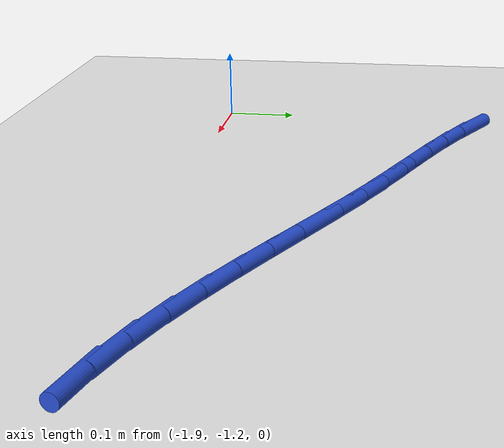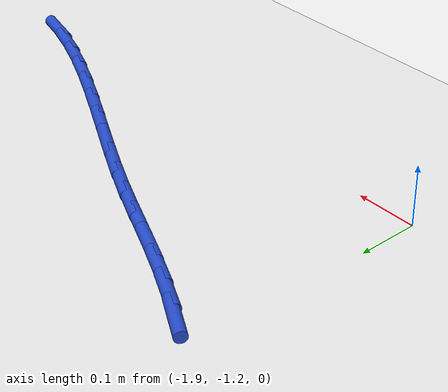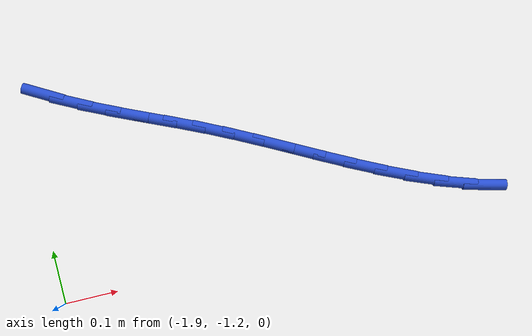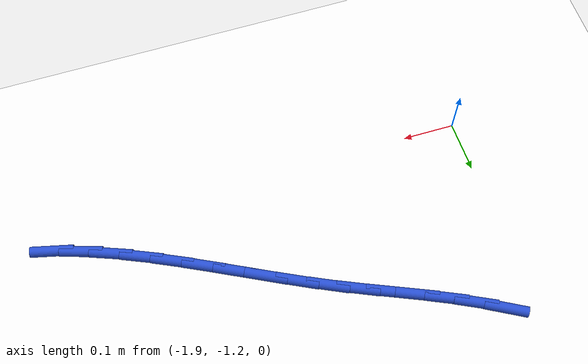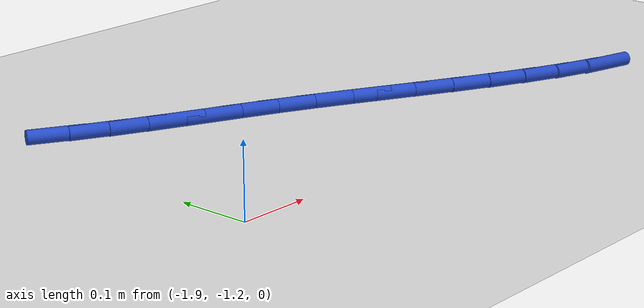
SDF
<sdf version="1.6">
 <world name="default">
  <model name="ground_plane">
   <static>1</static>
   <link name="link">
    <collision name="collision">
     <geometry><plane><normal>0 0 1</normal><size>100 100</size></plane></geometry>
     <surface><friction><ode><mu>100</mu><mu2>50</mu2></ode></friction></surface>
    </collision>
    <visual name="visual">
     <cast_shadows>0</cast_shadows>
     <geometry><plane><normal>0 0 1</normal><size>100 100</size></plane></geometry>
     <material>
      <script><uri>file://media/materials/scripts/gazebo.material</uri><name>Gazebo/WhiteGlow</name></script>
     </material>
    </visual>
   </link>
  </model>
  <model name="line">
   <link name="link_82">
    <pose>-1.846888417379108 -0.8126896721869026 0.01 0 1.57 -0.5111817930651534</pose>
    <collision name="collision">
     <geometry><cylinder><radius>0.01</radius><length>0.08</length></cylinder></geometry>
    </collision>
    <visual name="visual">
     <material>
      <script><name>Gazebo/Blue</name><uri>file://media/materials/scripts/gazebo.material</uri></script>
     </material>
     <geometry><cylinder><radius>0.01</radius><length>0.08</length></cylinder></geometry>
    </visual>
   </link>
   <link name="link_83">
    <pose>-1.799448190697535 -0.8392994313001075 0.01 0 1.57 -0.46376022309723575</pose>
    <collision name="collision">
     <geometry><cylinder><radius>0.01</radius><length>0.08</length></cylinder></geometry>
    </collision>
    <visual name="visual">
     <material>
      <script><name>Gazebo/Blue</name><uri>file://media/materials/scripts/gazebo.material</uri></script>
     </material>
     <geometry><cylinder><radius>0.01</radius><length>0.08</length></cylinder></geometry>
    </visual>
   </link>
   <link name="link_84">
    <pose>-1.7517562067794121 -0.8631521371243301 0.01 0 1.57 -0.4302460530320248</pose>
    <collision name="collision">
     <geometry><cylinder><radius>0.01</radius><length>0.08</length></cylinder></geometry>
    </collision>
    <visual name="visual">
     <material>
      <script><name>Gazebo/Blue</name><uri>file://media/materials/scripts/gazebo.material</uri></script>
     </material>
     <geometry><cylinder><radius>0.01</radius><length>0.08</length></cylinder></geometry>
    </visual>
   </link>
   <link name="link_85">
    <pose>-1.703734204883954 -0.8851903396459307 0.01 0 1.57 -0.41286326170841786</pose>
    <collision name="collision">
     <geometry><cylinder><radius>0.01</radius><length>0.08</length></cylinder></geometry>
    </collision>
    <visual name="visual">
     <material>
      <script><name>Gazebo/Blue</name><uri>file://media/materials/scripts/gazebo.material</uri></script>
     </material>
     <geometry><cylinder><radius>0.01</radius><length>0.08</length></cylinder></geometry>
    </visual>
   </link>
   <link name="link_86">
    <pose>-1.6552702149534972 -0.906419486392351 0.01 0 1.57 -0.41207111618917625</pose>
    <collision name="collision">
     <geometry><cylinder><radius>0.01</radius><length>0.08</length></cylinder></geometry>
    </collision>
    <visual name="visual">
     <material>
      <script><name>Gazebo/Blue</name><uri>file://media/materials/scripts/gazebo.material</uri></script>
     </material>
     <geometry><cylinder><radius>0.01</radius><length>0.08</length></cylinder></geometry>
    </visual>
   </link>
   <link name="link_87">
    <pose>-1.6062522669303796 -0.9278450248910332 0.01 0 1.57 -0.42735783086666396</pose>
    <collision name="collision">
     <geometry><cylinder><radius>0.01</radius><length>0.08</length></cylinder></geometry>
    </collision>
    <visual name="visual">
     <material>
      <script><name>Gazebo/Blue</name><uri>file://media/materials/scripts/gazebo.material</uri></script>
     </material>
     <geometry><cylinder><radius>0.01</radius><length>0.08</length></cylinder></geometry>
    </visual>
   </link>
   <link name="link_88">
    <pose>-1.556568390762511 -0.9504724026340022 0.01 0 1.57 -0.4530684508210297</pose>
    <collision name="collision">
     <geometry><cylinder><radius>0.01</radius><length>0.08</length></cylinder></geometry>
    </collision>
    <visual name="visual">
     <material>
      <script><name>Gazebo/Blue</name><uri>file://media/materials/scripts/gazebo.material</uri></script>
     </material>
     <geometry><cylinder><radius>0.01</radius><length>0.08</length></cylinder></geometry>
    </visual>
   </link>
   <link name="link_89">
    <pose>-1.5061522183239497 -0.9750172714232209 0.01 0 1.57 -0.47174186345460434</pose>
    <collision name="collision">
     <geometry><cylinder><radius>0.01</radius><length>0.08</length></cylinder></geometry>
    </collision>
    <visual name="visual">
     <material>
      <script><name>Gazebo/Blue</name><uri>file://media/materials/scripts/gazebo.material</uri></script>
     </material>
     <geometry><cylinder><radius>0.01</radius><length>0.08</length></cylinder></geometry>
    </visual>
   </link>
   <link name="link_90">
    <pose>-1.455117080422799 -1.0010533142669193 0.01 0 1.57 -0.48015281815471966</pose>
    <collision name="collision">
     <geometry><cylinder><radius>0.01</radius><length>0.08</length></cylinder></geometry>
    </collision>
    <visual name="visual">
     <material>
      <script><name>Gazebo/Blue</name><uri>file://media/materials/scripts/gazebo.material</uri></script>
     </material>
     <geometry><cylinder><radius>0.01</radius><length>0.08</length></cylinder></geometry>
    </visual>
   </link>
   <link name="link_91">
    <pose>-1.403620565434556 -1.027872961748992 0.01 0 1.57 -0.47890403679620563</pose>
    <collision name="collision">
     <geometry><cylinder><radius>0.01</radius><length>0.08</length></cylinder></geometry>
    </collision>
    <visual name="visual">
     <material>
      <script><name>Gazebo/Blue</name><uri>file://media/materials/scripts/gazebo.material</uri></script>
     </material>
     <geometry><cylinder><radius>0.01</radius><length>0.08</length></cylinder></geometry>
    </visual>
   </link>
   <link name="link_92">
    <pose>-1.3518202617347193 -1.0547686444533309 0.01 0 1.57 -0.4681175062050863</pose>
    <collision name="collision">
     <geometry><cylinder><radius>0.01</radius><length>0.08</length></cylinder></geometry>
    </collision>
    <visual name="visual">
     <material>
      <script><name>Gazebo/Blue</name><uri>file://media/materials/scripts/gazebo.material</uri></script>
     </material>
     <geometry><cylinder><radius>0.01</radius><length>0.08</length></cylinder></geometry>
    </visual>
   </link>
   <link name="link_93">
    <pose>-1.299873757698787 -1.0810327929638306 0.01 0 1.57 -0.44746033776730854</pose>
    <collision name="collision">
     <geometry><cylinder><radius>0.01</radius><length>0.08</length></cylinder></geometry>
    </collision>
    <visual name="visual">
     <material>
      <script><name>Gazebo/Blue</name><uri>file://media/materials/scripts/gazebo.material</uri></script>
     </material>
     <geometry><cylinder><radius>0.01</radius><length>0.08</length></cylinder></geometry>
    </visual>
   </link>
   <link name="link_94">
    <pose>-1.2479386417022544 -1.105957837864384 0.01 0 1.57 -0.4161446891037356</pose>
    <collision name="collision">
     <geometry><cylinder><radius>0.01</radius><length>0.08</length></cylinder></geometry>
    </collision>
    <visual name="visual">
     <material>
      <script><name>Gazebo/Blue</name><uri>file://media/materials/scripts/gazebo.material</uri></script>
     </material>
     <geometry><cylinder><radius>0.01</radius><length>0.08</length></cylinder></geometry>
    </visual>
   </link>
   <link name="link_95">
    <pose>-1.1961725021206222 -1.1288362097388849 0.01 0 1.57 -0.3729135434202981</pose>
    <collision name="collision">
     <geometry><cylinder><radius>0.01</radius><length>0.08</length></cylinder></geometry>
    </collision>
    <visual name="visual">
     <material>
      <script><name>Gazebo/Blue</name><uri>file://media/materials/scripts/gazebo.material</uri></script>
     </material>
     <geometry><cylinder><radius>0.01</radius><length>0.08</length></cylinder></geometry>
    </visual>
   </link>
   <link name="link_96">
    <pose>-1.1447329273293871 -1.1489603391712273 0.01 0 1.57 -0.3160378990204977</pose>
    <collision name="collision">
     <geometry><cylinder><radius>0.01</radius><length>0.08</length></cylinder></geometry>
    </collision>
    <visual name="visual">
     <material>
      <script><name>Gazebo/Blue</name><uri>file://media/materials/scripts/gazebo.material</uri></script>
     </material>
     <geometry><cylinder><radius>0.01</radius><length>0.08</length></cylinder></geometry>
    </visual>
   </link>
   <link name="link_97">
    <pose>-1.0937775057040462 -1.165622656745304 0.01 0 1.57 -0.2433789515846083</pose>
    <collision name="collision">
     <geometry><cylinder><radius>0.01</radius><length>0.08</length></cylinder></geometry>
    </collision>
    <visual name="visual">
     <material>
      <script><name>Gazebo/Blue</name><uri>file://media/materials/scripts/gazebo.material</uri></script>
     </material>
     <geometry><cylinder><radius>0.01</radius><length>0.08</length></cylinder></geometry>
    </visual>
   </link>
  </model>
 </world>
</sdf>
